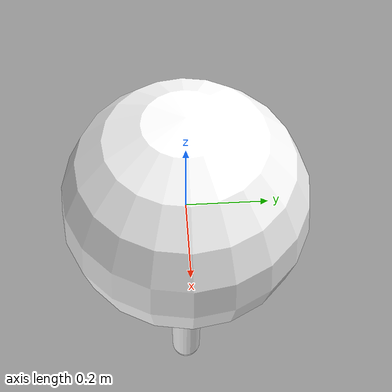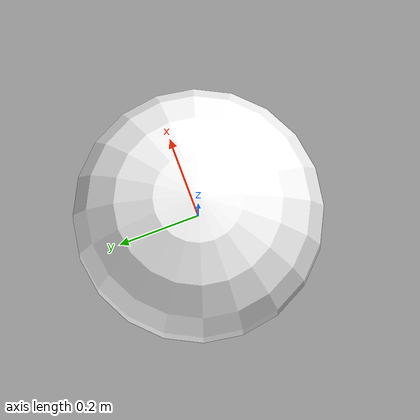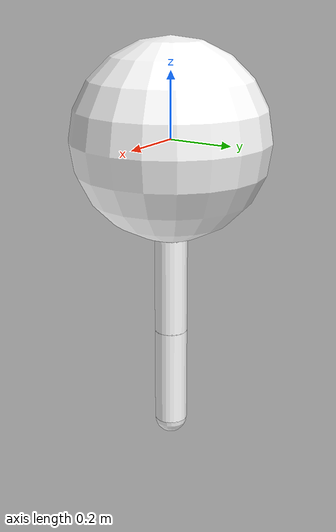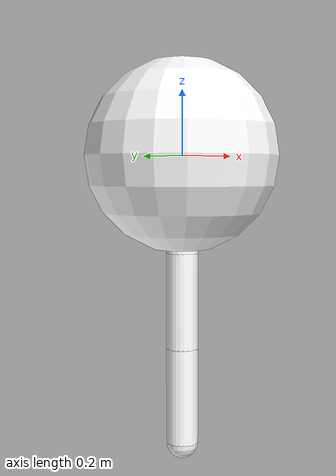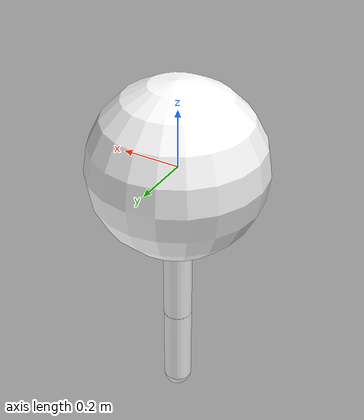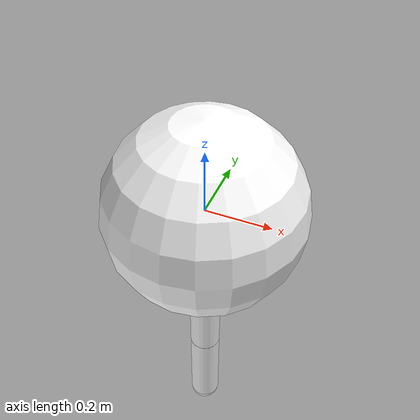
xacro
<?xml version='1.0' encoding='UTF-8'?>
<robot xmlns:xacro="http:/ros.org/wiki/xacro" name="single_world">

    <xacro:include filename="$(find tribot)/urdf/singlebot.xacro" />
    <xacro:single base_radius="0.3" base_length="0.2" hip_radius="0.05" leg_length="0.3" />

</robot>

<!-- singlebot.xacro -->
<robot name="singlebot"
    xmlns:xacro="http://ros.org/wiki/xacro">

    <xacro:macro name="single" params="base_radius base_length hip_radius leg_length">

        <link name="base_link" />

        <link name="robot_base">
            <inertial>
                <origin rpy="0 0 0" xyz="0 0 0"/>
                <mass value="3"/>
                <inertia ixx="0.1" ixy="0" ixz="0" iyy="0.1" iyz="0" izz="0.1"/>
            </inertial>
            <visual>
                <origin rpy="0 0 0" xyz="0 0 0"/>
                <geometry>
                    <sphere radius="${base_radius}"/>
                </geometry>
                <material name="framemat0">
                    <color rgba="1 1 1 1" />
                </material>
            </visual>
            <collision>
                <origin rpy="0 0 0" xyz="0 0 0"/>
                <geometry>
                    <sphere radius="${base_radius}"/>
                </geometry>
            </collision>
        </link>

        <link name="hip_back">
            <inertial>
                <origin rpy="0 0 0" xyz="0 0 0"/>
                <mass value="0.3"/>
                <inertia ixx="0.1" ixy="0" ixz="0" iyy="0.1" iyz="0" izz="0.1"/>
            </inertial>
            <visual>
                <origin rpy="0 0 0" xyz="0 0 0"/>
                <geometry>
                    <sphere radius="${hip_radius}" />
                </geometry>
                <material name="framemat0">
                    <color rgba="1 1 1 1" />
                </material>
            </visual>
            <collision>
                <origin rpy="0 0 0" xyz="0 0 0"/>
                <geometry>
                    <sphere radius="${hip_radius}" />
                </geometry>
            </collision>
        </link>

        <link name="leg_back">
            <inertial>
                <origin rpy="0 0 0" xyz="0 0 ${0.5*leg_length}"/>
                <mass value="0.3"/>
                <inertia ixx="0.1" ixy="0" ixz="0" iyy="0.1" iyz="0" izz="0.1"/>
            </inertial>
            <visual>
                <origin rpy="0 0 0" xyz="0 0 ${0.5*leg_length}"/>
                <geometry>
                    <cylinder radius="0.05" length="${leg_length}"/>
                </geometry>
                <material name="framemat0">
                    <color rgba="1 1 1 1" />
                </material>
            </visual>
            <collision>
                <origin rpy="0 0 0" xyz="0 0 ${0.5*leg_length}"/>
                <geometry>
                    <cylinder radius="0.05" length="${leg_length}"/>
                </geometry>
            </collision>
            <visual>
                <origin rpy="0 0 0" xyz="0 0 ${leg_length}"/>
                <geometry>
                    <sphere radius="0.05"/>
                </geometry>
                <material name="framemat0">
                    <color rgba="1 1 1 1" />
                </material>
            </visual>
            <collision>
                <origin rpy="0 0 0" xyz="0 0 ${leg_length}"/>
                <geometry>
                    <sphere radius="0.05"/>
                </geometry>
            </collision>
        </link>

        <link name="foot_back">
            <inertial>
                <origin rpy="0 0 0" xyz="0 0 ${0.5*leg_length}"/>
                <mass value="0.3"/>
                <inertia ixx="0.1" ixy="0" ixz="0" iyy="0.1" iyz="0" izz="0.1"/>
            </inertial>
            <visual>
                <origin rpy="0 0 0" xyz="0 0 ${0.5*leg_length}"/>
                <geometry>
                    <cylinder radius="0.05" length="${leg_length}"/>
                </geometry>
                <material name="framemat0">
                    <color rgba="1 1 1 1" />
                </material>
            </visual>
            <collision>
                <origin rpy="0 0 0" xyz="0 0 ${0.5*leg_length}"/>
                <geometry>
                    <cylinder radius="0.05" length="${leg_length}"/>
                </geometry>
            </collision>
            <visual>
                <origin rpy="0 0 0" xyz="0 0 ${leg_length}"/>
                <geometry>
                    <sphere radius="0.05"/>
                </geometry>
                <material name="framemat0">
                    <color rgba="1 1 1 1" />
                </material>
            </visual>
            <collision>
                <origin rpy="0 0 0" xyz="0 0 ${leg_length}"/>
                <geometry>
                    <sphere radius="0.05"/>
                </geometry>
            </collision>
        </link>

        <joint name="hip_back_joint" type="continuous">
            <parent link="base_link"/>
            <child link="hip_back"/>
            <origin xyz="0 0 ${-base_radius}" rpy="0 0 0" />
            <axis xyz="0 0 1" />
        </joint>

        <joint name="leg_back_joint" type="continuous">
            <parent link="hip_back"/>
            <child link="leg_back"/>
            <origin xyz="0 0 0" rpy="0 3.1415 0" />
            <axis xyz="0 1 0" />
        </joint>

        <joint name="foot_back_joint" type="prismatic">
            <parent link="leg_back"/>
            <child link="foot_back"/>
            <origin xyz="0 0 ${1.0*leg_length}" rpy="0 0 0" />
            <axis xyz="0 0 1" />
            <limit lower="-0.1" upper="0.2" effort="20" velocity="1.0"/>
        </joint>

        <joint name="base_joint" type="fixed">
            <parent link="base_link"/>
            <child link="robot_base"/>
            <origin xyz="0 0 0" rpy="0 0 0" />
            <axis xyz="1 0 0" />
        </joint>

    </xacro:macro>
</robot>
